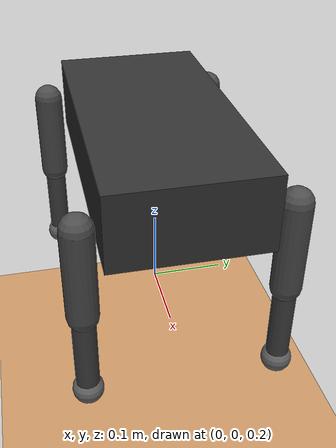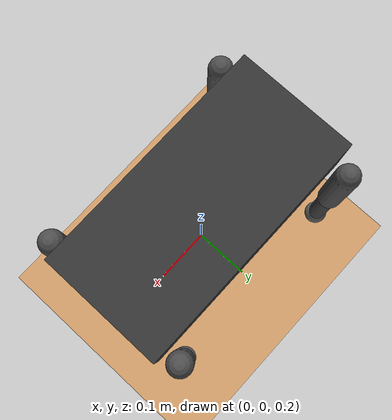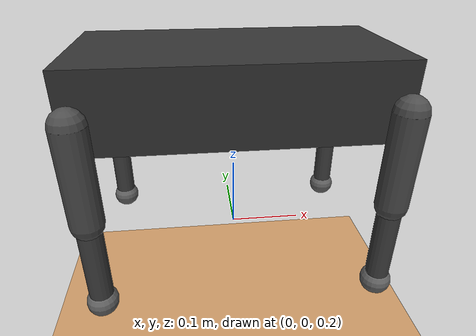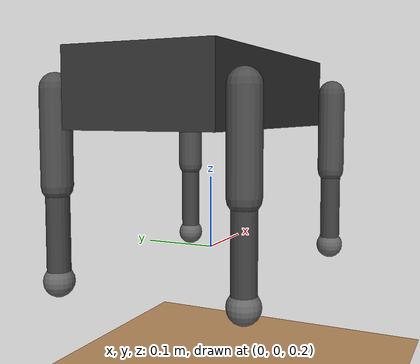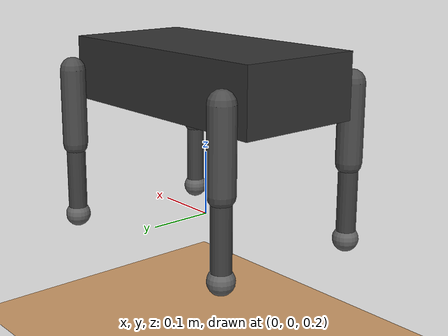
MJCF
<?xml version="1.0"?>
<mujoco model="go2">
  <compiler angle="radian" coordinate="local" inertiafromgeom="true" />

  <option timestep="0.002" iterations="50" solver="Newton" tolerance="1e-10" />

  <default>
    <joint armature="0.01" damping="0.1" limited="true" />
    <geom conaffinity="0" condim="3" density="5.0" friction="0.8 0.1 0.1" margin="0.01" rgba="0.8 0.6 0.4 1" />
  </default>

  <asset>
    <texture type="skybox" builtin="gradient" rgb1="0.4 0.5 0.6" rgb2="0 0 0" width="100" height="100" />
    <texture name="texplane" type="2d" builtin="checker" rgb1="0.2 0.3 0.4" rgb2="0.1 0.2 0.3" width="100" height="100" />
    <material name="matplane" texture="texplane" texrepeat="1 1" texuniform="true" reflectance="0.2" />
  </asset>

  <worldbody>
    <!-- Ground plane -->
    <geom name="floor" pos="0 0 0" size="0 0 0.05" type="plane" material="matplane" condim="3" />

    <!-- Lighting -->
    <light directional="true" diffuse=".8 .8 .8" specular=".1 .1 .1" pos="0 0 1" dir="0 0 -1" />

    <!-- Sites for sensors -->
    <site name="trunk_vel" pos="0 0 0" size="0.01" rgba="1 0 0 0" />
    <site name="trunk_gyro" pos="0 0 0" size="0.01" rgba="0 1 0 0" />

    <!-- Floating base -->
    <body name="trunk" pos="0 0 0.42" quat="1 0 0 0">
      <!-- Main body (trunk) with proper floating base (6 DOF) -->
      <freejoint name="root" />

      <geom name="trunk" type="box" size="0.2 0.1 0.05" pos="0 0 0" rgba="0.2 0.2 0.2 1" />

      <!-- Attach sites to trunk for sensors -->
      <site name="trunk_vel_site" pos="0 0 0" size="0.01" />
      <site name="trunk_gyro_site" pos="0 0 0" size="0.01" />

      <!-- Front Right Leg -->
      <body name="FR_hip" pos="0.18 -0.075 0">
        <joint name="FR_hip_joint" type="hinge" axis="0 0 1" range="-0.7 0.7" />
        <geom name="FR_hip" type="cylinder" size="0.02 0.02" pos="0 0 0" rgba="0.4 0.4 0.4 1" />

        <body name="FR_thigh" pos="0 -0.05 0">
          <joint name="FR_thigh_joint" type="hinge" axis="1 0 0" range="0.0 2.8" />
          <geom name="FR_thigh" type="capsule" size="0.02" fromto="0 0 0 0 0 -0.12" rgba="0.3 0.3 0.3 1" />

          <body name="FR_calf" pos="0 0 -0.12">
            <joint name="FR_calf_joint" type="hinge" axis="1 0 0" range="-3.0 -0.2" />
            <geom name="FR_calf" type="capsule" size="0.015" fromto="0 0 0 0 0 -0.12" rgba="0.25 0.25 0.25 1" />
            <geom name="FR_foot" type="sphere" size="0.02" pos="0 0 -0.12" rgba="0.4 0.4 0.4 1" />
          </body>
        </body>
      </body>

      <!-- Front Left Leg -->
      <body name="FL_hip" pos="0.18 0.075 0">
        <joint name="FL_hip_joint" type="hinge" axis="0 0 1" range="-0.7 0.7" />
        <geom name="FL_hip" type="cylinder" size="0.02 0.02" pos="0 0 0" rgba="0.4 0.4 0.4 1" />

        <body name="FL_thigh" pos="0 0.05 0">
          <joint name="FL_thigh_joint" type="hinge" axis="1 0 0" range="0.0 2.8" />
          <geom name="FL_thigh" type="capsule" size="0.02" fromto="0 0 0 0 0 -0.12" rgba="0.3 0.3 0.3 1" />

          <body name="FL_calf" pos="0 0 -0.12">
            <joint name="FL_calf_joint" type="hinge" axis="1 0 0" range="-3.0 -0.2" />
            <geom name="FL_calf" type="capsule" size="0.015" fromto="0 0 0 0 0 -0.12" rgba="0.25 0.25 0.25 1" />
            <geom name="FL_foot" type="sphere" size="0.02" pos="0 0 -0.12" rgba="0.4 0.4 0.4 1" />
          </body>
        </body>
      </body>

      <!-- Rear Right Leg -->
      <body name="RR_hip" pos="-0.18 -0.075 0">
        <joint name="RR_hip_joint" type="hinge" axis="0 0 1" range="-0.7 0.7" />
        <geom name="RR_hip" type="cylinder" size="0.02 0.02" pos="0 0 0" rgba="0.4 0.4 0.4 1" />

        <body name="RR_thigh" pos="0 -0.05 0">
          <joint name="RR_thigh_joint" type="hinge" axis="1 0 0" range="0.0 2.8" />
          <geom name="RR_thigh" type="capsule" size="0.02" fromto="0 0 0 0 0 -0.12" rgba="0.3 0.3 0.3 1" />

          <body name="RR_calf" pos="0 0 -0.12">
            <joint name="RR_calf_joint" type="hinge" axis="1 0 0" range="-3.0 -0.2" />
            <geom name="RR_calf" type="capsule" size="0.015" fromto="0 0 0 0 0 -0.12" rgba="0.25 0.25 0.25 1" />
            <geom name="RR_foot" type="sphere" size="0.02" pos="0 0 -0.12" rgba="0.4 0.4 0.4 1" />
          </body>
        </body>
      </body>

      <!-- Rear Left Leg -->
      <body name="RL_hip" pos="-0.18 0.075 0">
        <joint name="RL_hip_joint" type="hinge" axis="0 0 1" range="-0.7 0.7" />
        <geom name="RL_hip" type="cylinder" size="0.02 0.02" pos="0 0 0" rgba="0.4 0.4 0.4 1" />

        <body name="RL_thigh" pos="0 0.05 0">
          <joint name="RL_thigh_joint" type="hinge" axis="1 0 0" range="0.0 2.8" />
          <geom name="RL_thigh" type="capsule" size="0.02" fromto="0 0 0 0 0 -0.12" rgba="0.3 0.3 0.3 1" />

          <body name="RL_calf" pos="0 0 -0.12">
            <joint name="RL_calf_joint" type="hinge" axis="1 0 0" range="-3.0 -0.2" />
            <geom name="RL_calf" type="capsule" size="0.015" fromto="0 0 0 0 0 -0.12" rgba="0.25 0.25 0.25 1" />
            <geom name="RL_foot" type="sphere" size="0.02" pos="0 0 -0.12" rgba="0.4 0.4 0.4 1" />
          </body>
        </body>
      </body>
    </body>
  </worldbody>

  <actuator>
    <!-- Motor actuators with limits -->
    <motor name="FR_hip_motor" joint="FR_hip_joint" gear="35" ctrllimited="true" ctrlrange="-1.0 1.0" />
    <motor name="FR_thigh_motor" joint="FR_thigh_joint" gear="35" ctrllimited="true" ctrlrange="-1.0 1.0" />
    <motor name="FR_calf_motor" joint="FR_calf_joint" gear="35" ctrllimited="true" ctrlrange="-1.0 1.0" />

    <motor name="FL_hip_motor" joint="FL_hip_joint" gear="35" ctrllimited="true" ctrlrange="-1.0 1.0" />
    <motor name="FL_thigh_motor" joint="FL_thigh_joint" gear="35" ctrllimited="true" ctrlrange="-1.0 1.0" />
    <motor name="FL_calf_motor" joint="FL_calf_joint" gear="35" ctrllimited="true" ctrlrange="-1.0 1.0" />

    <motor name="RR_hip_motor" joint="RR_hip_joint" gear="35" ctrllimited="true" ctrlrange="-1.0 1.0" />
    <motor name="RR_thigh_motor" joint="RR_thigh_joint" gear="35" ctrllimited="true" ctrlrange="-1.0 1.0" />
    <motor name="RR_calf_motor" joint="RR_calf_joint" gear="35" ctrllimited="true" ctrlrange="-1.0 1.0" />

    <motor name="RL_hip_motor" joint="RL_hip_joint" gear="35" ctrllimited="true" ctrlrange="-1.0 1.0" />
    <motor name="RL_thigh_motor" joint="RL_thigh_joint" gear="35" ctrllimited="true" ctrlrange="-1.0 1.0" />
    <motor name="RL_calf_motor" joint="RL_calf_joint" gear="35" ctrllimited="true" ctrlrange="-1.0 1.0" />
  </actuator>

  <sensor>
    <!-- Velocity sensors for observation space -->
    <velocimeter name="trunk_linear_velocity" site="trunk_vel_site" />
    <gyro name="trunk_angular_velocity" site="trunk_gyro_site" />
  </sensor>
</mujoco>
